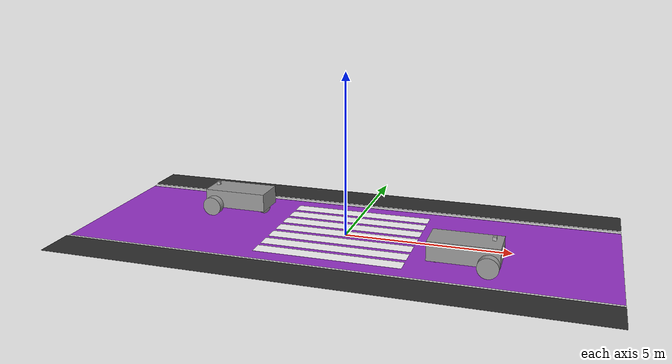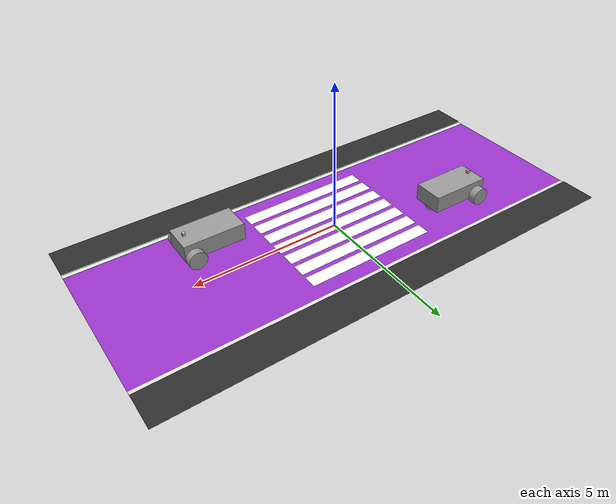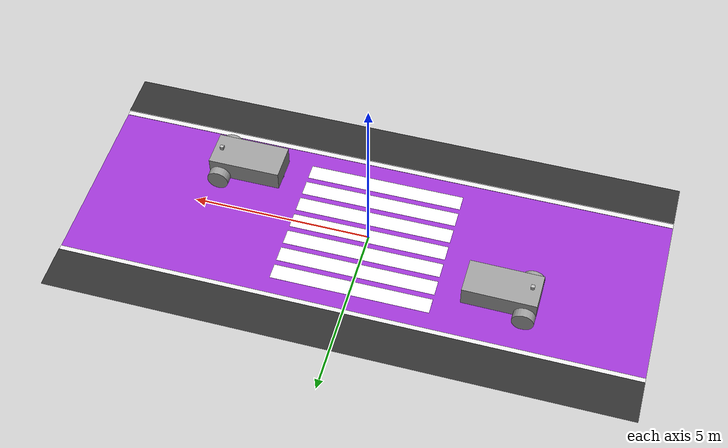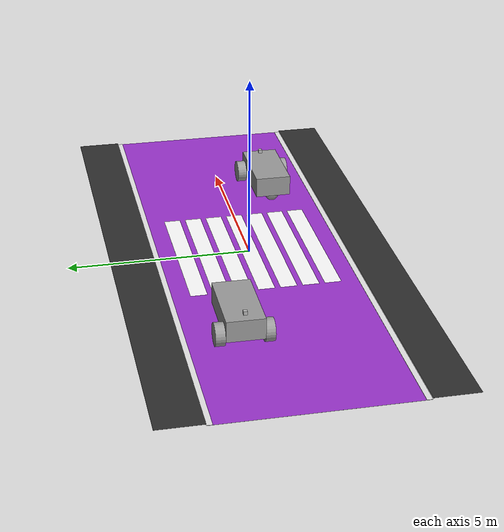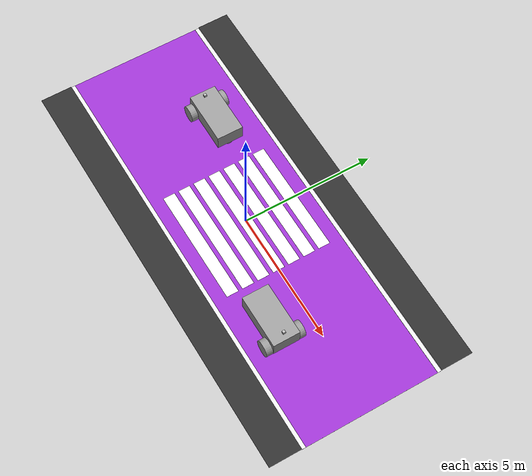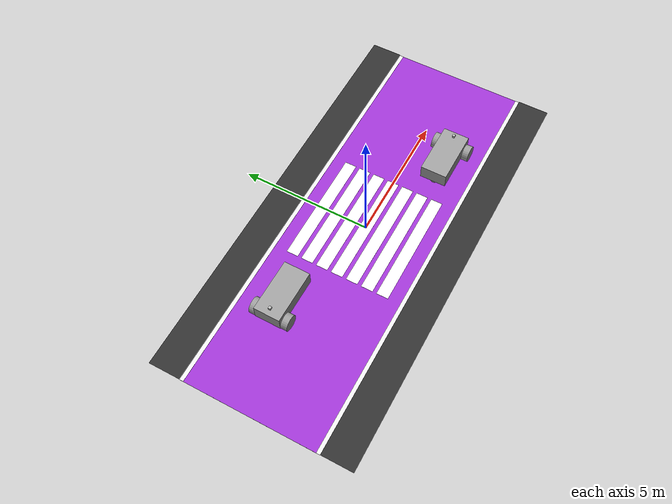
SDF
<sdf version="1.7">
 <world name="crosswalk_clean">
  <light name="sun" type="directional">
   <pose>0 0 10 0 -0 0</pose>
   <diffuse>0.8 0.8 0.8 1</diffuse>
   <specular>0.2 0.2 0.2 1</specular>
   <attenuation>
    <range>1000</range>
    <constant>0.9</constant>
    <linear>0.01</linear>
    <quadratic>0.001</quadratic>
   </attenuation>
   <direction>-0.5 0.1 -0.9</direction>
   <spot><inner_angle>0</inner_angle><outer_angle>0</outer_angle><falloff>0</falloff></spot>
  </light>
  <model name="road">
   <static>1</static>
   <pose>0 0 0.01 0 -0 0</pose>
   <link name="link">
    <collision name="collision"><geometry><box><size>16 5 0.02</size></box></geometry></collision>
    <visual name="visual">
     <pose>0 0 0.001 0 0 0</pose>
     <geometry><box><size>16 5 0.002</size></box></geometry>
     <material>
      <ambient>0.6 0.2 0.8 1</ambient>
      <diffuse>0.6 0.2 0.8 1</diffuse>
      <specular>0.05 0.05 0.05 1</specular>
     </material>
    </visual>
   </link>
  </model>
  <model name="curb_left">
   <static>true</static>
   <pose>0 2.575 0.015 0 0 0</pose>
   <link name="link">
    <collision name="collision"><geometry><box><size>16 0.15 0.01</size></box></geometry></collision>
    <visual name="visual">
     <geometry><box><size>16 0.15 0.01</size></box></geometry>
     <material>
      <ambient>0.9 0.9 0.9 1</ambient>
      <diffuse>0.9 0.9 0.9 1</diffuse>
      <specular>0.1 0.1 0.1 1</specular>
     </material>
    </visual>
   </link>
  </model>
  <model name="curb_right">
   <static>true</static>
   <pose>0 -2.575 0.015 0 0 0</pose>
   <link name="link">
    <collision name="collision"><geometry><box><size>16 0.15 0.01</size></box></geometry></collision>
    <visual name="visual">
     <geometry><box><size>16 0.15 0.01</size></box></geometry>
     <material>
      <ambient>0.9 0.9 0.9 1</ambient>
      <diffuse>0.9 0.9 0.9 1</diffuse>
      <specular>0.1 0.1 0.1 1</specular>
     </material>
    </visual>
   </link>
  </model>
  <model name="sidewalk_left">
   <static>1</static>
   <pose>0 3.25 0.03 0 -0 0</pose>
   <link name="link">
    <collision name="collision"><geometry><box><size>16 1.2 0.04</size></box></geometry></collision>
    <visual name="visual">
     <pose>0 0 0.0215 0 0 0</pose>
     <geometry><box><size>16 1.2 0.003</size></box></geometry>
     <material>
      <ambient>0.18 0.18 0.18 1</ambient>
      <diffuse>0.18 0.18 0.18 1</diffuse>
      <specular>0.02 0.02 0.02 1</specular>
     </material>
    </visual>
   </link>
  </model>
  <model name="sidewalk_right">
   <static>1</static>
   <pose>0 -3.25 0.03 0 -0 0</pose>
   <link name="link">
    <collision name="collision"><geometry><box><size>16 1.2 0.04</size></box></geometry></collision>
    <visual name="visual">
     <pose>0 0 0.0215 0 0 0</pose>
     <geometry><box><size>16 1.2 0.003</size></box></geometry>
     <material>
      <ambient>0.18 0.18 0.18 1</ambient>
      <diffuse>0.18 0.18 0.18 1</diffuse>
      <specular>0.02 0.02 0.02 1</specular>
     </material>
    </visual>
   </link>
  </model>
  <model name="crosswalk">
   <static>1</static>
   <pose>0 0 0.031 0 -0 1.57341</pose>
   <link name="link">
    <visual name="v1">
     <pose>-1.8 0 0.0 0 0 0</pose>
     <geometry><box><size>0.45 4.4 0.001</size></box></geometry>
     <material><ambient>1 1 1 1</ambient><diffuse>1 1 1 1</diffuse><specular>0.05 0.05 0.05 1</specular></material>
    </visual>
    <visual name="v2">
     <pose>-1.2 0 0.0 0 0 0</pose>
     <geometry><box><size>0.45 4.4 0.001</size></box></geometry>
     <material><ambient>1 1 1 1</ambient><diffuse>1 1 1 1</diffuse><specular>0.05 0.05 0.05 1</specular></material>
    </visual>
    <visual name="v3">
     <pose>-0.6 0 0.0 0 0 0</pose>
     <geometry><box><size>0.45 4.4 0.001</size></box></geometry>
     <material><ambient>1 1 1 1</ambient><diffuse>1 1 1 1</diffuse><specular>0.05 0.05 0.05 1</specular></material>
    </visual>
    <visual name="v4">
     <geometry><box><size>0.45 4.4 0.001</size></box></geometry>
     <material><ambient>1 1 1 1</ambient><diffuse>1 1 1 1</diffuse><specular>0.05 0.05 0.05 1</specular></material>
    </visual>
    <visual name="v5">
     <pose>0.6 0 0.0 0 0 0</pose>
     <geometry><box><size>0.45 4.4 0.001</size></box></geometry>
     <material><ambient>1 1 1 1</ambient><diffuse>1 1 1 1</diffuse><specular>0.05 0.05 0.05 1</specular></material>
    </visual>
    <visual name="v6">
     <pose>1.2 0 0.0 0 0 0</pose>
     <geometry><box><size>0.45 4.4 0.001</size></box></geometry>
     <material><ambient>1 1 1 1</ambient><diffuse>1 1 1 1</diffuse><specular>0.05 0.05 0.05 1</specular></material>
    </visual>
    <visual name="v7">
     <pose>1.8 0 0.0 0 0 0</pose>
     <geometry><box><size>0.45 4.4 0.001</size></box></geometry>
     <material><ambient>1 1 1 1</ambient><diffuse>1 1 1 1</diffuse><specular>0.05 0.05 0.05 1</specular></material>
    </visual>
   </link>
  </model>
  <gravity>0 0 -9.8</gravity>
  <physics type="ode">
   <max_step_size>0.001</max_step_size>
   <real_time_factor>1</real_time_factor>
   <real_time_update_rate>1000</real_time_update_rate>
  </physics>
  <scene><ambient>0.4 0.4 0.4 1</ambient><background>0.7 0.7 0.7 1</background><shadows>1</shadows></scene>
  <magnetic_field>6e-06 2.3e-05 -4.2e-05</magnetic_field>
  <atmosphere type="adiabatic"/>
  <audio><device>default</device></audio>
  <spherical_coordinates>
   <surface_model>EARTH_WGS84</surface_model>
   <latitude_deg>0</latitude_deg>
   <longitude_deg>0</longitude_deg>
   <elevation>0</elevation>
   <heading_deg>0</heading_deg>
  </spherical_coordinates>
  <model name="follower_vehicle">
   <link name="caster">
    <pose>-0.957138 0 -0.125 0 -0 0</pose>
    <inertial>
     <mass>1</mass>
     <inertia><ixx>0.1</ixx><ixy>0</ixy><ixz>0</ixz><iyy>0.1</iyy><iyz>0</iyz><izz>0.1</izz></inertia>
    </inertial>
    <visual name="visual">
     <geometry><sphere><radius>0.2</radius></sphere></geometry>
     <material>
      <script><uri>file://media/materials/scripts/gazebo.material</uri><name>Gazebo/Grey</name></script>
      <shader type="pixel"/>
     </material>
    </visual>
    <collision name="collision">
     <geometry><sphere><radius>0.2</radius></sphere></geometry>
     <surface>
      <friction>
       <ode><mu>1</mu><mu2>1</mu2><fdir1>0 0 0</fdir1><slip1>0</slip1><slip2>0</slip2></ode>
       <torsional>
        <coefficient>1</coefficient>
        <patch_radius>0</patch_radius>
        <surface_radius>0</surface_radius>
        <use_patch_radius>1</use_patch_radius>
        <ode><slip>0</slip></ode>
       </torsional>
      </friction>
      <bounce><restitution_coefficient>0</restitution_coefficient><threshold>1e+06</threshold></bounce>
      <contact>
       <collide_without_contact>0</collide_without_contact>
       <collide_without_contact_bitmask>1</collide_without_contact_bitmask>
       <collide_bitmask>1</collide_bitmask>
       <ode>
        <soft_cfm>0</soft_cfm>
        <soft_erp>0.2</soft_erp>
        <kp>1e+13</kp>
        <kd>1</kd>
        <max_vel>0.01</max_vel>
        <min_depth>0</min_depth>
       </ode>
       <bullet>
        <split_impulse>1</split_impulse>
        <split_impulse_penetration_threshold>-0.01</split_impulse_penetration_threshold>
        <soft_cfm>0</soft_cfm>
        <soft_erp>0.2</soft_erp>
        <kp>1e+13</kp>
        <kd>1</kd>
       </bullet>
      </contact>
     </surface>
    </collision>
   </link>
   <link name="chassis">
    <pose>-0.151427 0 0.175 0 -0 0</pose>
    <inertial>
     <mass>1.14395</mass>
     <inertia>
      <ixx>0.126164</ixx>
      <ixy>0</ixy>
      <ixz>0</ixz>
      <iyy>0.416519</iyy>
      <iyz>0</iyz>
      <izz>0.481014</izz>
     </inertia>
    </inertial>
    <visual name="visual">
     <geometry><box><size>2.01142 1 0.568726</size></box></geometry>
     <material>
      <script><uri>file://media/materials/scripts/gazebo.material</uri><name>Gazebo/Grey</name></script>
      <shader type="pixel"/>
     </material>
    </visual>
    <collision name="collision">
     <geometry><box><size>2.01142 1 0.568726</size></box></geometry>
     <surface>
      <friction>
       <ode><mu>1</mu><mu2>1</mu2><fdir1>0 0 0</fdir1><slip1>0</slip1><slip2>0</slip2></ode>
       <torsional>
        <coefficient>1</coefficient>
        <patch_radius>0</patch_radius>
        <surface_radius>0</surface_radius>
        <use_patch_radius>1</use_patch_radius>
        <ode><slip>0</slip></ode>
       </torsional>
      </friction>
      <bounce><restitution_coefficient>0</restitution_coefficient><threshold>1e+06</threshold></bounce>
      <contact>
       <collide_without_contact>0</collide_without_contact>
       <collide_without_contact_bitmask>1</collide_without_contact_bitmask>
       <collide_bitmask>1</collide_bitmask>
       <ode>
        <soft_cfm>0</soft_cfm>
        <soft_erp>0.2</soft_erp>
        <kp>1e+13</kp>
        <kd>1</kd>
        <max_vel>0.01</max_vel>
        <min_depth>0</min_depth>
       </ode>
       <bullet>
        <split_impulse>1</split_impulse>
        <split_impulse_penetration_threshold>-0.01</split_impulse_penetration_threshold>
        <soft_cfm>0</soft_cfm>
        <soft_erp>0.2</soft_erp>
        <kp>1e+13</kp>
        <kd>1</kd>
       </bullet>
      </contact>
     </surface>
    </collision>
   </link>
   <link name="wheel_1">
    <pose>0.554283 0.625029 -0.025 1.5707 -0 0</pose>
    <inertial>
     <mass>2</mass>
     <inertia><ixx>0.145833</ixx><ixy>0</ixy><ixz>0</ixz><iyy>0.145833</iyy><iyz>0</iyz><izz>0.125</izz></inertia>
    </inertial>
    <visual name="visual">
     <geometry><cylinder><radius>0.3</radius><length>0.25</length></cylinder></geometry>
     <material>
      <script><uri>file://media/materials/scripts/gazebo.material</uri><name>Gazebo/Grey</name></script>
      <shader type="pixel"/>
     </material>
    </visual>
    <collision name="collision">
     <geometry><cylinder><radius>0.3</radius><length>0.25</length></cylinder></geometry>
     <surface>
      <friction>
       <ode><mu>1</mu><mu2>1</mu2><fdir1>0 0 0</fdir1><slip1>0</slip1><slip2>0</slip2></ode>
       <torsional>
        <coefficient>1</coefficient>
        <patch_radius>0</patch_radius>
        <surface_radius>0</surface_radius>
        <use_patch_radius>1</use_patch_radius>
        <ode><slip>0</slip></ode>
       </torsional>
      </friction>
      <bounce><restitution_coefficient>0</restitution_coefficient><threshold>1e+06</threshold></bounce>
      <contact>
       <collide_without_contact>0</collide_without_contact>
       <collide_without_contact_bitmask>1</collide_without_contact_bitmask>
       <collide_bitmask>1</collide_bitmask>
       <ode>
        <soft_cfm>0</soft_cfm>
        <soft_erp>0.2</soft_erp>
        <kp>1e+13</kp>
        <kd>1</kd>
        <max_vel>0.01</max_vel>
        <min_depth>0</min_depth>
       </ode>
       <bullet>
        <split_impulse>1</split_impulse>
        <split_impulse_penetration_threshold>-0.01</split_impulse_penetration_threshold>
        <soft_cfm>0</soft_cfm>
        <soft_erp>0.2</soft_erp>
        <kp>1e+13</kp>
        <kd>1</kd>
       </bullet>
      </contact>
     </surface>
    </collision>
   </link>
   <link name="wheel_2">
    <pose>0.554282 -0.625029 -0.025 1.5707 -0 0</pose>
    <inertial>
     <mass>2</mass>
     <inertia><ixx>0.145833</ixx><ixy>0</ixy><ixz>0</ixz><iyy>0.145833</iyy><iyz>0</iyz><izz>0.125</izz></inertia>
    </inertial>
    <visual name="visual">
     <geometry><cylinder><radius>0.3</radius><length>0.25</length></cylinder></geometry>
     <material>
      <script><uri>file://media/materials/scripts/gazebo.material</uri><name>Gazebo/Grey</name></script>
      <shader type="pixel"/>
     </material>
    </visual>
    <collision name="collision">
     <geometry><cylinder><radius>0.3</radius><length>0.25</length></cylinder></geometry>
     <surface>
      <friction>
       <ode><mu>1</mu><mu2>1</mu2><fdir1>0 0 0</fdir1><slip1>0</slip1><slip2>0</slip2></ode>
       <torsional>
        <coefficient>1</coefficient>
        <patch_radius>0</patch_radius>
        <surface_radius>0</surface_radius>
        <use_patch_radius>1</use_patch_radius>
        <ode><slip>0</slip></ode>
       </torsional>
      </friction>
      <bounce><restitution_coefficient>0</restitution_coefficient><threshold>1e+06</threshold></bounce>
      <contact>
       <collide_without_contact>0</collide_without_contact>
       <collide_without_contact_bitmask>1</collide_without_contact_bitmask>
       <collide_bitmask>1</collide_bitmask>
       <ode>
        <soft_cfm>0</soft_cfm>
        <soft_erp>0.2</soft_erp>
        <kp>1e+13</kp>
        <kd>1</kd>
        <max_vel>0.01</max_vel>
        <min_depth>0</min_depth>
       </ode>
       <bullet>
        <split_impulse>1</split_impulse>
        <split_impulse_penetration_threshold>-0.01</split_impulse_penetration_threshold>
        <soft_cfm>0</soft_cfm>
        <soft_erp>0.2</soft_erp>
        <kp>1e+13</kp>
        <kd>1</kd>
       </bullet>
      </contact>
     </surface>
    </collision>
   </link>
   <model name="depth_camera">
    <link name="link">
     <pose>0.05 0.05 0.05 0 -0 0</pose>
     <inertial>
      <mass>0.1</mass>
      <inertia>
       <ixx>0.000166667</ixx>
       <iyy>0.000166667</iyy>
       <izz>0.000166667</izz>
       <ixy>0</ixy>
       <ixz>0</ixz>
       <iyz>0</iyz>
      </inertia>
     </inertial>
     <collision name="collision"><geometry><box><size>0.1 0.1 0.1</size></box></geometry></collision>
     <visual name="visual"><geometry><box><size>0.1 0.1 0.1</size></box></geometry></visual>
     <sensor name="camera" type="depth">
      <camera name="depth">
       <horizontal_fov>1.047</horizontal_fov>
       <image><width>320</width><height>240</height></image>
       <clip><near>0.1</near><far>100</far></clip>
      </camera>
      <always_on>1</always_on>
      <update_rate>30</update_rate>
      <visualize>1</visualize>
     </sensor>
    </link>
    <pose>0.569632 -0.03223 0.502056 0 -0 0</pose>
   </model>
   <joint name="chassis_caster_ball" type="ball">
    <parent>chassis</parent>
    <child>caster</child>
    <physics>
     <ode><limit><cfm>0</cfm><erp>0.2</erp></limit><suspension><cfm>0</cfm><erp>0.2</erp></suspension></ode>
    </physics>
   </joint>
   <joint name="chassis_depth_camera_link_fixed" type="fixed">
    <parent>chassis</parent>
    <child>depth_camera::link</child>
    <physics>
     <ode><limit><cfm>0</cfm><erp>0.2</erp></limit><suspension><cfm>0</cfm><erp>0.2</erp></suspension></ode>
    </physics>
   </joint>
   <joint name="chassis_wheel_1_revolute" type="revolute">
    <parent>chassis</parent>
    <child>wheel_1</child>
    <axis>
     <xyz>0 0 1</xyz>
     <limit>
      <lower>-1.79769e+308</lower>
      <upper>1.79769e+308</upper>
      <effort>-1</effort>
      <velocity>-1</velocity>
     </limit>
     <dynamics>
      <spring_reference>0</spring_reference>
      <spring_stiffness>0</spring_stiffness>
      <damping>0</damping>
      <friction>0</friction>
     </dynamics>
    </axis>
    <physics>
     <ode><limit><cfm>0</cfm><erp>0.2</erp></limit><suspension><cfm>0</cfm><erp>0.2</erp></suspension></ode>
    </physics>
   </joint>
   <joint name="chassis_wheel_2_revolute" type="revolute">
    <parent>chassis</parent>
    <child>wheel_2</child>
    <axis>
     <xyz>0 0 1</xyz>
     <limit>
      <lower>-1.79769e+308</lower>
      <upper>1.79769e+308</upper>
      <effort>-1</effort>
      <velocity>-1</velocity>
     </limit>
     <dynamics>
      <spring_reference>0</spring_reference>
      <spring_stiffness>0</spring_stiffness>
      <damping>0</damping>
      <friction>0</friction>
     </dynamics>
    </axis>
    <physics>
     <ode><limit><cfm>0</cfm><erp>0.2</erp></limit><suspension><cfm>0</cfm><erp>0.2</erp></suspension></ode>
    </physics>
   </joint>
   <static>1</static>
   <plugin name="follower" filename="libFollowerPlugin.so"/>
   <pose>3.97679 -1.30033 0.370445 0 -0 0</pose>
  </model>
  <model name="follower_vehicle_0">
   <link name="caster">
    <pose>-0.957138 -0 -0.125 0 -0 0</pose>
    <inertial>
     <mass>1</mass>
     <inertia><ixx>0.1</ixx><ixy>0</ixy><ixz>0</ixz><iyy>0.1</iyy><iyz>0</iyz><izz>0.1</izz></inertia>
    </inertial>
    <visual name="visual">
     <geometry><sphere><radius>0.2</radius></sphere></geometry>
     <material>
      <script><uri>file://media/materials/scripts/gazebo.material</uri><name>Gazebo/Grey</name></script>
      <shader type="pixel"/>
     </material>
    </visual>
    <collision name="collision">
     <geometry><sphere><radius>0.2</radius></sphere></geometry>
     <surface>
      <friction>
       <ode><mu>1</mu><mu2>1</mu2><fdir1>0 0 0</fdir1><slip1>0</slip1><slip2>0</slip2></ode>
       <torsional>
        <coefficient>1</coefficient>
        <patch_radius>0</patch_radius>
        <surface_radius>0</surface_radius>
        <use_patch_radius>1</use_patch_radius>
        <ode><slip>0</slip></ode>
       </torsional>
      </friction>
      <bounce><restitution_coefficient>0</restitution_coefficient><threshold>1e+06</threshold></bounce>
      <contact>
       <collide_without_contact>0</collide_without_contact>
       <collide_without_contact_bitmask>1</collide_without_contact_bitmask>
       <collide_bitmask>1</collide_bitmask>
       <ode>
        <soft_cfm>0</soft_cfm>
        <soft_erp>0.2</soft_erp>
        <kp>1e+13</kp>
        <kd>1</kd>
        <max_vel>0.01</max_vel>
        <min_depth>0</min_depth>
       </ode>
       <bullet>
        <split_impulse>1</split_impulse>
        <split_impulse_penetration_threshold>-0.01</split_impulse_penetration_threshold>
        <soft_cfm>0</soft_cfm>
        <soft_erp>0.2</soft_erp>
        <kp>1e+13</kp>
        <kd>1</kd>
       </bullet>
      </contact>
     </surface>
    </collision>
   </link>
   <link name="chassis">
    <pose>-0.151427 0 0.175 0 -0 0</pose>
    <inertial>
     <mass>1.14395</mass>
     <inertia>
      <ixx>0.126164</ixx>
      <ixy>0</ixy>
      <ixz>0</ixz>
      <iyy>0.416519</iyy>
      <iyz>0</iyz>
      <izz>0.481014</izz>
     </inertia>
    </inertial>
    <visual name="visual">
     <geometry><box><size>2.01142 1 0.568726</size></box></geometry>
     <material>
      <script><uri>file://media/materials/scripts/gazebo.material</uri><name>Gazebo/Grey</name></script>
      <shader type="pixel"/>
     </material>
    </visual>
    <collision name="collision">
     <geometry><box><size>2.01142 1 0.568726</size></box></geometry>
     <surface>
      <friction>
       <ode><mu>1</mu><mu2>1</mu2><fdir1>0 0 0</fdir1><slip1>0</slip1><slip2>0</slip2></ode>
       <torsional>
        <coefficient>1</coefficient>
        <patch_radius>0</patch_radius>
        <surface_radius>0</surface_radius>
        <use_patch_radius>1</use_patch_radius>
        <ode><slip>0</slip></ode>
       </torsional>
      </friction>
      <bounce><restitution_coefficient>0</restitution_coefficient><threshold>1e+06</threshold></bounce>
      <contact>
       <collide_without_contact>0</collide_without_contact>
       <collide_without_contact_bitmask>1</collide_without_contact_bitmask>
       <collide_bitmask>1</collide_bitmask>
       <ode>
        <soft_cfm>0</soft_cfm>
        <soft_erp>0.2</soft_erp>
        <kp>1e+13</kp>
        <kd>1</kd>
        <max_vel>0.01</max_vel>
        <min_depth>0</min_depth>
       </ode>
       <bullet>
        <split_impulse>1</split_impulse>
        <split_impulse_penetration_threshold>-0.01</split_impulse_penetration_threshold>
        <soft_cfm>0</soft_cfm>
        <soft_erp>0.2</soft_erp>
        <kp>1e+13</kp>
        <kd>1</kd>
       </bullet>
      </contact>
     </surface>
    </collision>
   </link>
   <link name="wheel_1">
    <pose>0.554283 0.625029 -0.025 1.5707 -0 0</pose>
    <inertial>
     <mass>2</mass>
     <inertia><ixx>0.145833</ixx><ixy>0</ixy><ixz>0</ixz><iyy>0.145833</iyy><iyz>0</iyz><izz>0.125</izz></inertia>
    </inertial>
    <visual name="visual">
     <geometry><cylinder><radius>0.3</radius><length>0.25</length></cylinder></geometry>
     <material>
      <script><uri>file://media/materials/scripts/gazebo.material</uri><name>Gazebo/Grey</name></script>
      <shader type="pixel"/>
     </material>
    </visual>
    <collision name="collision">
     <geometry><cylinder><radius>0.3</radius><length>0.25</length></cylinder></geometry>
     <surface>
      <friction>
       <ode><mu>1</mu><mu2>1</mu2><fdir1>0 0 0</fdir1><slip1>0</slip1><slip2>0</slip2></ode>
       <torsional>
        <coefficient>1</coefficient>
        <patch_radius>0</patch_radius>
        <surface_radius>0</surface_radius>
        <use_patch_radius>1</use_patch_radius>
        <ode><slip>0</slip></ode>
       </torsional>
      </friction>
      <bounce><restitution_coefficient>0</restitution_coefficient><threshold>1e+06</threshold></bounce>
      <contact>
       <collide_without_contact>0</collide_without_contact>
       <collide_without_contact_bitmask>1</collide_without_contact_bitmask>
       <collide_bitmask>1</collide_bitmask>
       <ode>
        <soft_cfm>0</soft_cfm>
        <soft_erp>0.2</soft_erp>
        <kp>1e+13</kp>
        <kd>1</kd>
        <max_vel>0.01</max_vel>
        <min_depth>0</min_depth>
       </ode>
       <bullet>
        <split_impulse>1</split_impulse>
        <split_impulse_penetration_threshold>-0.01</split_impulse_penetration_threshold>
        <soft_cfm>0</soft_cfm>
        <soft_erp>0.2</soft_erp>
        <kp>1e+13</kp>
        <kd>1</kd>
       </bullet>
      </contact>
     </surface>
    </collision>
   </link>
   <link name="wheel_2">
    <pose>0.554282 -0.625029 -0.025 1.5707 -0 0</pose>
    <inertial>
     <mass>2</mass>
     <inertia><ixx>0.145833</ixx><ixy>0</ixy><ixz>0</ixz><iyy>0.145833</iyy><iyz>0</iyz><izz>0.125</izz></inertia>
    </inertial>
    <visual name="visual">
     <geometry><cylinder><radius>0.3</radius><length>0.25</length></cylinder></geometry>
     <material>
      <script><uri>file://media/materials/scripts/gazebo.material</uri><name>Gazebo/Grey</name></script>
      <shader type="pixel"/>
     </material>
    </visual>
    <collision name="collision">
     <geometry><cylinder><radius>0.3</radius><length>0.25</length></cylinder></geometry>
     <surface>
      <friction>
       <ode><mu>1</mu><mu2>1</mu2><fdir1>0 0 0</fdir1><slip1>0</slip1><slip2>0</slip2></ode>
       <torsional>
        <coefficient>1</coefficient>
        <patch_radius>0</patch_radius>
        <surface_radius>0</surface_radius>
        <use_patch_radius>1</use_patch_radius>
        <ode><slip>0</slip></ode>
       </torsional>
      </friction>
      <bounce><restitution_coefficient>0</restitution_coefficient><threshold>1e+06</threshold></bounce>
      <contact>
       <collide_without_contact>0</collide_without_contact>
       <collide_without_contact_bitmask>1</collide_without_contact_bitmask>
       <collide_bitmask>1</collide_bitmask>
       <ode>
        <soft_cfm>0</soft_cfm>
        <soft_erp>0.2</soft_erp>
        <kp>1e+13</kp>
        <kd>1</kd>
        <max_vel>0.01</max_vel>
        <min_depth>0</min_depth>
       </ode>
       <bullet>
        <split_impulse>1</split_impulse>
        <split_impulse_penetration_threshold>-0.01</split_impulse_penetration_threshold>
        <soft_cfm>0</soft_cfm>
        <soft_erp>0.2</soft_erp>
        <kp>1e+13</kp>
        <kd>1</kd>
       </bullet>
      </contact>
     </surface>
    </collision>
   </link>
   <model name="depth_camera">
    <link name="link">
     <pose>0.05 0.05 0.05 0 -0 0</pose>
     <inertial>
      <mass>0.1</mass>
      <inertia>
       <ixx>0.000166667</ixx>
       <iyy>0.000166667</iyy>
       <izz>0.000166667</izz>
       <ixy>0</ixy>
       <ixz>0</ixz>
       <iyz>0</iyz>
      </inertia>
     </inertial>
     <collision name="collision"><geometry><box><size>0.1 0.1 0.1</size></box></geometry></collision>
     <visual name="visual"><geometry><box><size>0.1 0.1 0.1</size></box></geometry></visual>
     <sensor name="camera" type="depth">
      <camera name="depth">
       <horizontal_fov>1.047</horizontal_fov>
       <image><width>320</width><height>240</height></image>
       <clip><near>0.1</near><far>100</far></clip>
      </camera>
      <always_on>1</always_on>
      <update_rate>30</update_rate>
      <visualize>1</visualize>
     </sensor>
    </link>
    <pose>0.569632 -0.03223 0.502056 0 -0 0</pose>
   </model>
   <joint name="chassis_caster_ball" type="ball">
    <parent>chassis</parent>
    <child>caster</child>
    <physics>
     <ode><limit><cfm>0</cfm><erp>0.2</erp></limit><suspension><cfm>0</cfm><erp>0.2</erp></suspension></ode>
    </physics>
   </joint>
   <joint name="chassis_depth_camera_link_fixed" type="fixed">
    <parent>chassis</parent>
    <child>depth_camera::link</child>
    <physics>
     <ode><limit><cfm>0</cfm><erp>0.2</erp></limit><suspension><cfm>0</cfm><erp>0.2</erp></suspension></ode>
    </physics>
   </joint>
   <joint name="chassis_wheel_1_revolute" type="revolute">
    <parent>chassis</parent>
    <child>wheel_1</child>
    <axis>
     <xyz>0 0 1</xyz>
     <limit>
      <lower>-1.79769e+308</lower>
      <upper>1.79769e+308</upper>
      <effort>-1</effort>
      <velocity>-1</velocity>
     </limit>
     <dynamics>
      <spring_reference>0</spring_reference>
      <spring_stiffness>0</spring_stiffness>
      <damping>0</damping>
      <friction>0</friction>
     </dynamics>
    </axis>
    <physics>
     <ode><limit><cfm>0</cfm><erp>0.2</erp></limit><suspension><cfm>0</cfm><erp>0.2</erp></suspension></ode>
    </physics>
   </joint>
   <joint name="chassis_wheel_2_revolute" type="revolute">
    <parent>chassis</parent>
    <child>wheel_2</child>
    <axis>
     <xyz>0 0 1</xyz>
     <limit>
      <lower>-1.79769e+308</lower>
      <upper>1.79769e+308</upper>
      <effort>-1</effort>
      <velocity>-1</velocity>
     </limit>
     <dynamics>
      <spring_reference>0</spring_reference>
      <spring_stiffness>0</spring_stiffness>
      <damping>0</damping>
      <friction>0</friction>
     </dynamics>
    </axis>
    <physics>
     <ode><limit><cfm>0</cfm><erp>0.2</erp></limit><suspension><cfm>0</cfm><erp>0.2</erp></suspension></ode>
    </physics>
   </joint>
   <static>1</static>
   <plugin name="follower" filename="libFollowerPlugin.so"/>
   <pose>-4.0957 1.10435 0.32533 0 -0 3.13387</pose>
  </model>
 </world>
</sdf>
